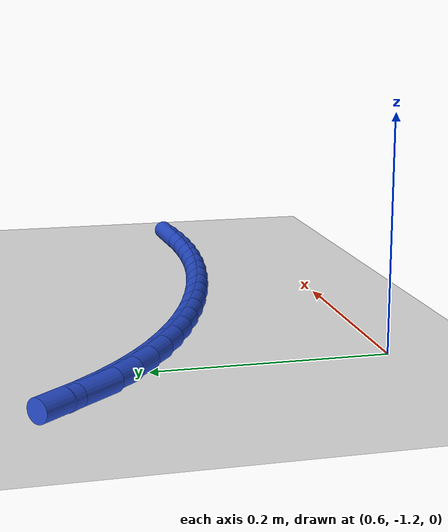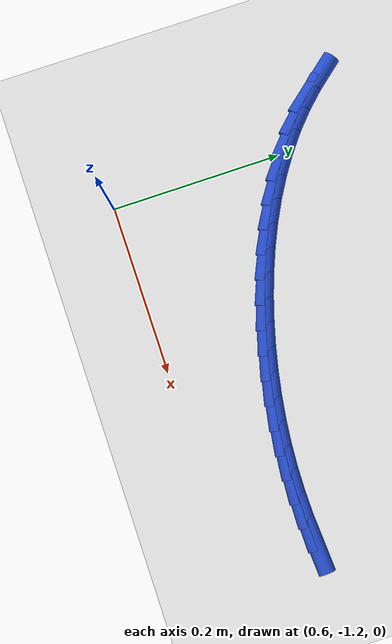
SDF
<sdf version="1.6">
 <world name="default">
  <model name="ground_plane">
   <static>1</static>
   <link name="link">
    <collision name="collision">
     <geometry><plane><normal>0 0 1</normal><size>100 100</size></plane></geometry>
     <surface><friction><ode><mu>100</mu><mu2>50</mu2></ode></friction></surface>
    </collision>
    <visual name="visual">
     <cast_shadows>0</cast_shadows>
     <geometry><plane><normal>0 0 1</normal><size>100 100</size></plane></geometry>
     <material>
      <script><uri>file://media/materials/scripts/gazebo.material</uri><name>Gazebo/WhiteGlow</name></script>
     </material>
    </visual>
   </link>
  </model>
  <model name="line">
   <link name="link_181">
    <pose>1.0298669543109167 -1.1017849917311406 0.01 0 1.57 0.05816445767853005</pose>
    <collision name="collision">
     <geometry><cylinder><radius>0.01</radius><length>0.08</length></cylinder></geometry>
    </collision>
    <visual name="visual">
     <material>
      <script><name>Gazebo/Blue</name><uri>file://media/materials/scripts/gazebo.material</uri></script>
     </material>
     <geometry><cylinder><radius>0.01</radius><length>0.08</length></cylinder></geometry>
    </visual>
   </link>
   <link name="link_182">
    <pose>1.0021018109808097 -1.1034017598783168 0.01 0 1.57 0.016189430648612075</pose>
    <collision name="collision">
     <geometry><cylinder><radius>0.01</radius><length>0.08</length></cylinder></geometry>
    </collision>
    <visual name="visual">
     <material>
      <script><name>Gazebo/Blue</name><uri>file://media/materials/scripts/gazebo.material</uri></script>
     </material>
     <geometry><cylinder><radius>0.01</radius><length>0.08</length></cylinder></geometry>
    </visual>
   </link>
   <link name="link_183">
    <pose>0.9742435590520844 -1.1038528085228625 0.01 0 1.57 -0.025121162228844068</pose>
    <collision name="collision">
     <geometry><cylinder><radius>0.01</radius><length>0.08</length></cylinder></geometry>
    </collision>
    <visual name="visual">
     <material>
      <script><name>Gazebo/Blue</name><uri>file://media/materials/scripts/gazebo.material</uri></script>
     </material>
     <geometry><cylinder><radius>0.01</radius><length>0.08</length></cylinder></geometry>
    </visual>
   </link>
   <link name="link_184">
    <pose>0.9463254308153096 -1.1031513251257303 0.01 0 1.57 -0.06577875114087045</pose>
    <collision name="collision">
     <geometry><cylinder><radius>0.01</radius><length>0.08</length></cylinder></geometry>
    </collision>
    <visual name="visual">
     <material>
      <script><name>Gazebo/Blue</name><uri>file://media/materials/scripts/gazebo.material</uri></script>
     </material>
     <geometry><cylinder><radius>0.01</radius><length>0.08</length></cylinder></geometry>
    </visual>
   </link>
   <link name="link_185">
    <pose>0.918380658561053 -1.1013104971478718 0.01 0 1.57 -0.1058016522803057</pose>
    <collision name="collision">
     <geometry><cylinder><radius>0.01</radius><length>0.08</length></cylinder></geometry>
    </collision>
    <visual name="visual">
     <material>
      <script><name>Gazebo/Blue</name><uri>file://media/materials/scripts/gazebo.material</uri></script>
     </material>
     <geometry><cylinder><radius>0.01</radius><length>0.08</length></cylinder></geometry>
    </visual>
   </link>
   <link name="link_186">
    <pose>0.890442474579886 -1.0983435120502403 0.01 0 1.57 -0.14521411550676483</pose>
    <collision name="collision">
     <geometry><cylinder><radius>0.01</radius><length>0.08</length></cylinder></geometry>
    </collision>
    <visual name="visual">
     <material>
      <script><name>Gazebo/Blue</name><uri>file://media/materials/scripts/gazebo.material</uri></script>
     </material>
     <geometry><cylinder><radius>0.01</radius><length>0.08</length></cylinder></geometry>
    </visual>
   </link>
   <link name="link_187">
    <pose>0.862544111162376 -1.0942635572937878 0.01 0 1.57 -0.18404540487950022</pose>
    <collision name="collision">
     <geometry><cylinder><radius>0.01</radius><length>0.08</length></cylinder></geometry>
    </collision>
    <visual name="visual">
     <material>
      <script><name>Gazebo/Blue</name><uri>file://media/materials/scripts/gazebo.material</uri></script>
     </material>
     <geometry><cylinder><radius>0.01</radius><length>0.08</length></cylinder></geometry>
    </visual>
   </link>
   <link name="link_188">
    <pose>0.8347188005990922 -1.0890838203394668 0.01 0 1.57 -0.2223289300615428</pose>
    <collision name="collision">
     <geometry><cylinder><radius>0.01</radius><length>0.08</length></cylinder></geometry>
    </collision>
    <visual name="visual">
     <material>
      <script><name>Gazebo/Blue</name><uri>file://media/materials/scripts/gazebo.material</uri></script>
     </material>
     <geometry><cylinder><radius>0.01</radius><length>0.08</length></cylinder></geometry>
    </visual>
   </link>
   <link name="link_189">
    <pose>0.8069997751806033 -1.0828174886482298 0.01 0 1.57 -0.26010144012422093</pose>
    <collision name="collision">
     <geometry><cylinder><radius>0.01</radius><length>0.08</length></cylinder></geometry>
    </collision>
    <visual name="visual">
     <material>
      <script><name>Gazebo/Blue</name><uri>file://media/materials/scripts/gazebo.material</uri></script>
     </material>
     <geometry><cylinder><radius>0.01</radius><length>0.08</length></cylinder></geometry>
    </visual>
   </link>
   <link name="link_190">
    <pose>0.7794202671974788 -1.0754777496810297 0.01 0 1.57 -0.29778369319206466</pose>
    <collision name="collision">
     <geometry><cylinder><radius>0.01</radius><length>0.08</length></cylinder></geometry>
    </collision>
    <visual name="visual">
     <material>
      <script><name>Gazebo/Blue</name><uri>file://media/materials/scripts/gazebo.material</uri></script>
     </material>
     <geometry><cylinder><radius>0.01</radius><length>0.08</length></cylinder></geometry>
    </visual>
   </link>
   <link name="link_191">
    <pose>0.752027617284368 -1.0670706844650708 0.01 0 1.57 -0.3376135555547641</pose>
    <collision name="collision">
     <geometry><cylinder><radius>0.01</radius><length>0.08</length></cylinder></geometry>
    </collision>
    <visual name="visual">
     <material>
      <script><name>Gazebo/Blue</name><uri>file://media/materials/scripts/gazebo.material</uri></script>
     </material>
     <geometry><cylinder><radius>0.01</radius><length>0.08</length></cylinder></geometry>
    </visual>
   </link>
   <link name="link_192">
    <pose>0.7249461171906596 -1.05756361341926 0.01 0 1.57 -0.3806658741501556</pose>
    <collision name="collision">
     <geometry><cylinder><radius>0.01</radius><length>0.08</length></cylinder></geometry>
    </collision>
    <visual name="visual">
     <material>
      <script><name>Gazebo/Blue</name><uri>file://media/materials/scripts/gazebo.material</uri></script>
     </material>
     <geometry><cylinder><radius>0.01</radius><length>0.08</length></cylinder></geometry>
    </visual>
   </link>
   <link name="link_193">
    <pose>0.6983261649919669 -1.0469107070934183 0.01 0 1.57 -0.4273528505955502</pose>
    <collision name="collision">
     <geometry><cylinder><radius>0.01</radius><length>0.08</length></cylinder></geometry>
    </collision>
    <visual name="visual">
     <material>
      <script><name>Gazebo/Blue</name><uri>file://media/materials/scripts/gazebo.material</uri></script>
     </material>
     <geometry><cylinder><radius>0.01</radius><length>0.08</length></cylinder></geometry>
    </visual>
   </link>
   <link name="link_194">
    <pose>0.6723181799478769 -1.0350661253669058 0.01 0 1.57 -0.47809600201160785</pose>
    <collision name="collision">
     <geometry><cylinder><radius>0.01</radius><length>0.08</length></cylinder></geometry>
    </collision>
    <visual name="visual">
     <material>
      <script><name>Gazebo/Blue</name><uri>file://media/materials/scripts/gazebo.material</uri></script>
     </material>
     <geometry><cylinder><radius>0.01</radius><length>0.08</length></cylinder></geometry>
    </visual>
   </link>
   <link name="link_195">
    <pose>0.6470725813179763 -1.0219840281190828 0.01 0 1.57 -0.5333116318672146</pose>
    <collision name="collision">
     <geometry><cylinder><radius>0.01</radius><length>0.08</length></cylinder></geometry>
    </collision>
    <visual name="visual">
     <material>
      <script><name>Gazebo/Blue</name><uri>file://media/materials/scripts/gazebo.material</uri></script>
     </material>
     <geometry><cylinder><radius>0.01</radius><length>0.08</length></cylinder></geometry>
    </visual>
   </link>
   <link name="link_196">
    <pose>0.6227397883618525 -1.007618575229311 0.01 0 1.57 -0.5933861550092355</pose>
    <collision name="collision">
     <geometry><cylinder><radius>0.01</radius><length>0.08</length></cylinder></geometry>
    </collision>
    <visual name="visual">
     <material>
      <script><name>Gazebo/Blue</name><uri>file://media/materials/scripts/gazebo.material</uri></script>
     </material>
     <geometry><cylinder><radius>0.01</radius><length>0.08</length></cylinder></geometry>
    </visual>
   </link>
   <link name="link_197">
    <pose>0.5994702203390925 -0.9919239265769508 0.01 0 1.57 -0.6586396283062377</pose>
    <collision name="collision">
     <geometry><cylinder><radius>0.01</radius><length>0.08</length></cylinder></geometry>
    </collision>
    <visual name="visual">
     <material>
      <script><name>Gazebo/Blue</name><uri>file://media/materials/scripts/gazebo.material</uri></script>
     </material>
     <geometry><cylinder><radius>0.01</radius><length>0.08</length></cylinder></geometry>
    </visual>
   </link>
   <link name="link_198">
    <pose>0.5774142965092837 -0.9748542420413627 0.01 0 1.57 -0.7292763570443801</pose>
    <collision name="collision">
     <geometry><cylinder><radius>0.01</radius><length>0.08</length></cylinder></geometry>
    </collision>
    <visual name="visual">
     <material>
      <script><name>Gazebo/Blue</name><uri>file://media/materials/scripts/gazebo.material</uri></script>
     </material>
     <geometry><cylinder><radius>0.01</radius><length>0.08</length></cylinder></geometry>
    </visual>
   </link>
   <link name="link_199">
    <pose>0.5567224361320131 -0.9563636815019082 0.01 0 1.57 -0.805006196670943</pose>
    <collision name="collision">
     <geometry><cylinder><radius>0.01</radius><length>0.08</length></cylinder></geometry>
    </collision>
    <visual name="visual">
     <material>
      <script><name>Gazebo/Blue</name><uri>file://media/materials/scripts/gazebo.material</uri></script>
     </material>
     <geometry><cylinder><radius>0.01</radius><length>0.08</length></cylinder></geometry>
    </visual>
   </link>
   <link name="link_200">
    <pose>0.5375378566180496 -0.9364116108871133 0.01 0 1.57 -0.8757983570230137</pose>
    <collision name="collision">
     <geometry><cylinder><radius>0.01</radius><length>0.08</length></cylinder></geometry>
    </collision>
    <visual name="visual">
     <material>
      <script><name>Gazebo/Blue</name><uri>file://media/materials/scripts/gazebo.material</uri></script>
     </material>
     <geometry><cylinder><radius>0.01</radius><length>0.08</length></cylinder></geometry>
    </visual>
   </link>
  </model>
 </world>
</sdf>
